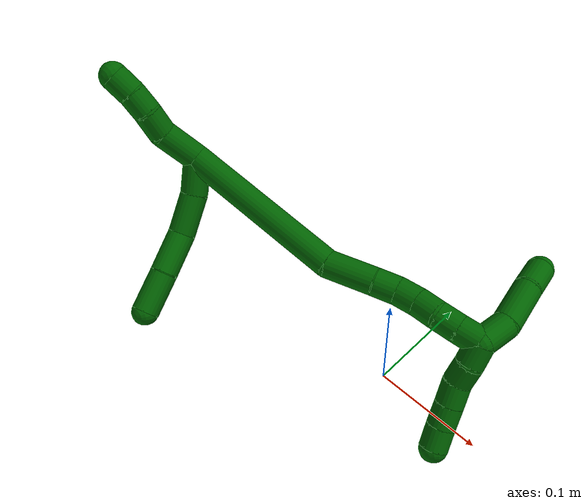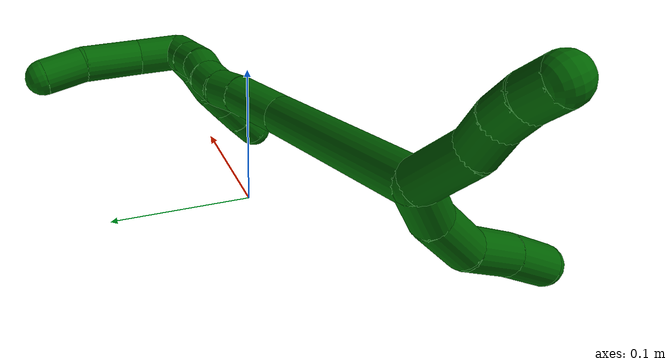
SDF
<sdf version="1.7">
 <world name="default">
  <model name="6">
   <static>0</static>
   <link name="6">
    <collision name="collision-cylinder-e_1_2_8">
     <pose>0.007473 -0.014028 0.004125 1.2848 0.472506 0.356471</pose>
     <geometry><cylinder><radius>0.0125</radius><length>0.032842</length></cylinder></geometry>
     <surface>
      <friction><ode><mu>1.16</mu><mu2>1.16</mu2><slip1>0</slip1><slip2>0</slip2></ode></friction>
      <contact><ode><kp>1e+06</kp><kd>1</kd><max_vel>0</max_vel><min_depth>0.001</min_depth></ode></contact>
     </surface>
    </collision>
    <visual name="visual-cylinder-e_1_2_8">
     <pose>0.007473 -0.014028 0.004125 1.2848 0.472506 0.356471</pose>
     <geometry><cylinder><radius>0.0125</radius><length>0.032842</length></cylinder></geometry>
     <material><ambient>0 0.392157 0.003922 1</ambient></material>
    </visual>
    <collision name="collision-cylinder-e_2_8_9">
     <pose>0.02186 -0.043873 0.017204 1.0557 0.363453 0.213454</pose>
     <geometry><cylinder><radius>0.0125</radius><length>0.038893</length></cylinder></geometry>
     <surface>
      <friction><ode><mu>1.16</mu><mu2>1.16</mu2><slip1>0</slip1><slip2>0</slip2></ode></friction>
      <contact><ode><kp>1e+06</kp><kd>1</kd><max_vel>0</max_vel><min_depth>0.001</min_depth></ode></contact>
     </surface>
    </collision>
    <visual name="visual-cylinder-e_2_8_9">
     <pose>0.02186 -0.043873 0.017204 1.0557 0.363453 0.213454</pose>
     <geometry><cylinder><radius>0.0125</radius><length>0.038893</length></cylinder></geometry>
     <material><ambient>0 0.392157 0.003922 1</ambient></material>
    </visual>
    <collision name="collision-cylinder-e_3_9_10">
     <pose>0.036402 -0.071622 0.040151 0.706018 0.393216 0.146511</pose>
     <geometry><cylinder><radius>0.0125</radius><length>0.039818</length></cylinder></geometry>
     <surface>
      <friction><ode><mu>1.16</mu><mu2>1.16</mu2><slip1>0</slip1><slip2>0</slip2></ode></friction>
      <contact><ode><kp>1e+06</kp><kd>1</kd><max_vel>0</max_vel><min_depth>0.001</min_depth></ode></contact>
     </surface>
    </collision>
    <visual name="visual-cylinder-e_3_9_10">
     <pose>0.036402 -0.071622 0.040151 0.706018 0.393216 0.146511</pose>
     <geometry><cylinder><radius>0.0125</radius><length>0.039818</length></cylinder></geometry>
     <material><ambient>0 0.392157 0.003922 1</ambient></material>
    </visual>
    <collision name="collision-cylinder-e_4_10_6">
     <pose>0.050544 -0.096208 0.067067 0.774925 0.345685 0.142253</pose>
     <geometry><cylinder><radius>0.0125</radius><length>0.038448</length></cylinder></geometry>
     <surface>
      <friction><ode><mu>1.16</mu><mu2>1.16</mu2><slip1>0</slip1><slip2>0</slip2></ode></friction>
      <contact><ode><kp>1e+06</kp><kd>1</kd><max_vel>0</max_vel><min_depth>0.001</min_depth></ode></contact>
     </surface>
    </collision>
    <visual name="visual-cylinder-e_4_10_6">
     <pose>0.050544 -0.096208 0.067067 0.774925 0.345685 0.142253</pose>
     <geometry><cylinder><radius>0.0125</radius><length>0.038448</length></cylinder></geometry>
     <material><ambient>0 0.392157 0.003922 1</ambient></material>
    </visual>
    <collision name="collision-cylinder-e_1_2_11">
     <pose>-0.013631 0.007417 0.010759 -0.603544 -0.80651 0.26406</pose>
     <geometry><cylinder><radius>0.0125</radius><length>0.037767</length></cylinder></geometry>
     <surface>
      <friction><ode><mu>1.16</mu><mu2>1.16</mu2><slip1>0</slip1><slip2>0</slip2></ode></friction>
      <contact><ode><kp>1e+06</kp><kd>1</kd><max_vel>0</max_vel><min_depth>0.001</min_depth></ode></contact>
     </surface>
    </collision>
    <visual name="visual-cylinder-e_1_2_11">
     <pose>-0.013631 0.007417 0.010759 -0.603544 -0.80651 0.26406</pose>
     <geometry><cylinder><radius>0.0125</radius><length>0.037767</length></cylinder></geometry>
     <material><ambient>0 0.392157 0.003922 1</ambient></material>
    </visual>
    <collision name="collision-cylinder-e_2_11_12">
     <pose>-0.034532 0.022136 0.02566 -1.05487 -0.713641 0.427629</pose>
     <geometry><cylinder><radius>0.0125</radius><length>0.022211</length></cylinder></geometry>
     <surface>
      <friction><ode><mu>1.16</mu><mu2>1.16</mu2><slip1>0</slip1><slip2>0</slip2></ode></friction>
      <contact><ode><kp>1e+06</kp><kd>1</kd><max_vel>0</max_vel><min_depth>0.001</min_depth></ode></contact>
     </surface>
    </collision>
    <visual name="visual-cylinder-e_2_11_12">
     <pose>-0.034532 0.022136 0.02566 -1.05487 -0.713641 0.427629</pose>
     <geometry><cylinder><radius>0.0125</radius><length>0.022211</length></cylinder></geometry>
     <material><ambient>0 0.392157 0.003922 1</ambient></material>
    </visual>
    <collision name="collision-cylinder-e_3_12_13">
     <pose>-0.049668 0.03466 0.033101 -1.00718 -0.905192 0.52354</pose>
     <geometry><cylinder><radius>0.0125</radius><length>0.020003</length></cylinder></geometry>
     <surface>
      <friction><ode><mu>1.16</mu><mu2>1.16</mu2><slip1>0</slip1><slip2>0</slip2></ode></friction>
      <contact><ode><kp>1e+06</kp><kd>1</kd><max_vel>0</max_vel><min_depth>0.001</min_depth></ode></contact>
     </surface>
    </collision>
    <visual name="visual-cylinder-e_3_12_13">
     <pose>-0.049668 0.03466 0.033101 -1.00718 -0.905192 0.52354</pose>
     <geometry><cylinder><radius>0.0125</radius><length>0.020003</length></cylinder></geometry>
     <material><ambient>0 0.392157 0.003922 1</ambient></material>
    </visual>
    <collision name="collision-cylinder-e_4_13_5">
     <pose>-0.065916 0.043784 0.040239 -0.793807 -0.992252 0.446202</pose>
     <geometry><cylinder><radius>0.0125</radius><length>0.02002</length></cylinder></geometry>
     <surface>
      <friction><ode><mu>1.16</mu><mu2>1.16</mu2><slip1>0</slip1><slip2>0</slip2></ode></friction>
      <contact><ode><kp>1e+06</kp><kd>1</kd><max_vel>0</max_vel><min_depth>0.001</min_depth></ode></contact>
     </surface>
    </collision>
    <visual name="visual-cylinder-e_4_13_5">
     <pose>-0.065916 0.043784 0.040239 -0.793807 -0.992252 0.446202</pose>
     <geometry><cylinder><radius>0.0125</radius><length>0.02002</length></cylinder></geometry>
     <material><ambient>0 0.392157 0.003922 1</ambient></material>
    </visual>
    <collision name="collision-cylinder-e_1_2_14">
     <pose>0.077718 0.002852 -0.005267 -2.64528 1.49388 -2.60736</pose>
     <geometry><cylinder><radius>0.0125</radius><length>0.155896</length></cylinder></geometry>
     <surface>
      <friction><ode><mu>1.16</mu><mu2>1.16</mu2><slip1>0</slip1><slip2>0</slip2></ode></friction>
      <contact><ode><kp>1e+06</kp><kd>1</kd><max_vel>0</max_vel><min_depth>0.001</min_depth></ode></contact>
     </surface>
    </collision>
    <visual name="visual-cylinder-e_1_2_14">
     <pose>0.077718 0.002852 -0.005267 -2.64528 1.49388 -2.60736</pose>
     <geometry><cylinder><radius>0.0125</radius><length>0.155896</length></cylinder></geometry>
     <material><ambient>0 0.392157 0.003922 1</ambient></material>
    </visual>
    <collision name="collision-cylinder-e_2_14_15">
     <pose>0.175548 0.011434 -0.016273 -2.357 1.18751 -2.04182</pose>
     <geometry><cylinder><radius>0.0125</radius><length>0.043372</length></cylinder></geometry>
     <surface>
      <friction><ode><mu>1.16</mu><mu2>1.16</mu2><slip1>0</slip1><slip2>0</slip2></ode></friction>
      <contact><ode><kp>1e+06</kp><kd>1</kd><max_vel>0</max_vel><min_depth>0.001</min_depth></ode></contact>
     </surface>
    </collision>
    <visual name="visual-cylinder-e_2_14_15">
     <pose>0.175548 0.011434 -0.016273 -2.357 1.18751 -2.04182</pose>
     <geometry><cylinder><radius>0.0125</radius><length>0.043372</length></cylinder></geometry>
     <material><ambient>0 0.392157 0.003922 1</ambient></material>
    </visual>
    <collision name="collision-cylinder-e_3_15_16">
     <pose>0.205215 0.019171 -0.025337 -2.59849 1.18476 -2.35706</pose>
     <geometry><cylinder><radius>0.0125</radius><length>0.020627</length></cylinder></geometry>
     <surface>
      <friction><ode><mu>1.16</mu><mu2>1.16</mu2><slip1>0</slip1><slip2>0</slip2></ode></friction>
      <contact><ode><kp>1e+06</kp><kd>1</kd><max_vel>0</max_vel><min_depth>0.001</min_depth></ode></contact>
     </surface>
    </collision>
    <visual name="visual-cylinder-e_3_15_16">
     <pose>0.205215 0.019171 -0.025337 -2.59849 1.18476 -2.35706</pose>
     <geometry><cylinder><radius>0.0125</radius><length>0.020627</length></cylinder></geometry>
     <material><ambient>0 0.392157 0.003922 1</ambient></material>
    </visual>
    <collision name="collision-cylinder-e_4_16_17">
     <pose>0.224471 0.023626 -0.029428 -1.8743 1.31228 -1.6176</pose>
     <geometry><cylinder><radius>0.0125</radius><length>0.020071</length></cylinder></geometry>
     <surface>
      <friction><ode><mu>1.16</mu><mu2>1.16</mu2><slip1>0</slip1><slip2>0</slip2></ode></friction>
      <contact><ode><kp>1e+06</kp><kd>1</kd><max_vel>0</max_vel><min_depth>0.001</min_depth></ode></contact>
     </surface>
    </collision>
    <visual name="visual-cylinder-e_4_16_17">
     <pose>0.224471 0.023626 -0.029428 -1.8743 1.31228 -1.6176</pose>
     <geometry><cylinder><radius>0.0125</radius><length>0.020071</length></cylinder></geometry>
     <material><ambient>0 0.392157 0.003922 1</ambient></material>
    </visual>
    <collision name="collision-cylinder-e_5_17_18">
     <pose>0.243767 0.028755 -0.029277 -1.24118 1.28369 -0.981341</pose>
     <geometry><cylinder><radius>0.0125</radius><length>0.020008</length></cylinder></geometry>
     <surface>
      <friction><ode><mu>1.16</mu><mu2>1.16</mu2><slip1>0</slip1><slip2>0</slip2></ode></friction>
      <contact><ode><kp>1e+06</kp><kd>1</kd><max_vel>0</max_vel><min_depth>0.001</min_depth></ode></contact>
     </surface>
    </collision>
    <visual name="visual-cylinder-e_5_17_18">
     <pose>0.243767 0.028755 -0.029277 -1.24118 1.28369 -0.981341</pose>
     <geometry><cylinder><radius>0.0125</radius><length>0.020008</length></cylinder></geometry>
     <material><ambient>0 0.392157 0.003922 1</ambient></material>
    </visual>
    <collision name="collision-cylinder-e_6_18_19">
     <pose>0.263216 0.032727 -0.02947 -2.28051 1.39964 -2.14287</pose>
     <geometry><cylinder><radius>0.0125</radius><length>0.02</length></cylinder></geometry>
     <surface>
      <friction><ode><mu>1.16</mu><mu2>1.16</mu2><slip1>0</slip1><slip2>0</slip2></ode></friction>
      <contact><ode><kp>1e+06</kp><kd>1</kd><max_vel>0</max_vel><min_depth>0.001</min_depth></ode></contact>
     </surface>
    </collision>
    <visual name="visual-cylinder-e_6_18_19">
     <pose>0.263216 0.032727 -0.02947 -2.28051 1.39964 -2.14287</pose>
     <geometry><cylinder><radius>0.0125</radius><length>0.02</length></cylinder></geometry>
     <material><ambient>0 0.392157 0.003922 1</ambient></material>
    </visual>
    <collision name="collision-cylinder-e_7_19_1">
     <pose>0.282886 0.035648 -0.031702 -2.17374 1.37198 -2.00003</pose>
     <geometry><cylinder><radius>0.0125</radius><length>0.020026</length></cylinder></geometry>
     <surface>
      <friction><ode><mu>1.16</mu><mu2>1.16</mu2><slip1>0</slip1><slip2>0</slip2></ode></friction>
      <contact><ode><kp>1e+06</kp><kd>1</kd><max_vel>0</max_vel><min_depth>0.001</min_depth></ode></contact>
     </surface>
    </collision>
    <visual name="visual-cylinder-e_7_19_1">
     <pose>0.282886 0.035648 -0.031702 -2.17374 1.37198 -2.00003</pose>
     <geometry><cylinder><radius>0.0125</radius><length>0.020026</length></cylinder></geometry>
     <material><ambient>0 0.392157 0.003922 1</ambient></material>
    </visual>
    <collision name="collision-cylinder-e_1_1_20">
     <pose>0.294618 0.040891 -0.046864 -2.88964 0.131436 -0.958509</pose>
     <geometry><cylinder><radius>0.0125</radius><length>0.02925</length></cylinder></geometry>
     <surface>
      <friction><ode><mu>1.16</mu><mu2>1.16</mu2><slip1>0</slip1><slip2>0</slip2></ode></friction>
      <contact><ode><kp>1e+06</kp><kd>1</kd><max_vel>0</max_vel><min_depth>0.001</min_depth></ode></contact>
     </surface>
    </collision>
    <visual name="visual-cylinder-e_1_1_20">
     <pose>0.294618 0.040891 -0.046864 -2.88964 0.131436 -0.958509</pose>
     <geometry><cylinder><radius>0.0125</radius><length>0.02925</length></cylinder></geometry>
     <material><ambient>0 0.392157 0.003922 1</ambient></material>
    </visual>
    <collision name="collision-cylinder-e_2_20_21">
     <pose>0.292655 0.050618 -0.080571 -2.84026 -0.186201 1.10278</pose>
     <geometry><cylinder><radius>0.0125</radius><length>0.041911</length></cylinder></geometry>
     <surface>
      <friction><ode><mu>1.16</mu><mu2>1.16</mu2><slip1>0</slip1><slip2>0</slip2></ode></friction>
      <contact><ode><kp>1e+06</kp><kd>1</kd><max_vel>0</max_vel><min_depth>0.001</min_depth></ode></contact>
     </surface>
    </collision>
    <visual name="visual-cylinder-e_2_20_21">
     <pose>0.292655 0.050618 -0.080571 -2.84026 -0.186201 1.10278</pose>
     <geometry><cylinder><radius>0.0125</radius><length>0.041911</length></cylinder></geometry>
     <material><ambient>0 0.392157 0.003922 1</ambient></material>
    </visual>
    <collision name="collision-cylinder-e_3_21_4">
     <pose>0.286716 0.058213 -0.11443 -3.03749 -0.143342 1.88613</pose>
     <geometry><cylinder><radius>0.0125</radius><length>0.028839</length></cylinder></geometry>
     <surface>
      <friction><ode><mu>1.16</mu><mu2>1.16</mu2><slip1>0</slip1><slip2>0</slip2></ode></friction>
      <contact><ode><kp>1e+06</kp><kd>1</kd><max_vel>0</max_vel><min_depth>0.001</min_depth></ode></contact>
     </surface>
    </collision>
    <visual name="visual-cylinder-e_3_21_4">
     <pose>0.286716 0.058213 -0.11443 -3.03749 -0.143342 1.88613</pose>
     <geometry><cylinder><radius>0.0125</radius><length>0.028839</length></cylinder></geometry>
     <material><ambient>0 0.392157 0.003922 1</ambient></material>
    </visual>
    <collision name="collision-cylinder-e_1_1_22">
     <pose>0.294931 0.028346 -0.028916 1.15834 0.224846 0.1474</pose>
     <geometry><cylinder><radius>0.0125</radius><length>0.02</length></cylinder></geometry>
     <surface>
      <friction><ode><mu>1.16</mu><mu2>1.16</mu2><slip1>0</slip1><slip2>0</slip2></ode></friction>
      <contact><ode><kp>1e+06</kp><kd>1</kd><max_vel>0</max_vel><min_depth>0.001</min_depth></ode></contact>
     </surface>
    </collision>
    <visual name="visual-cylinder-e_1_1_22">
     <pose>0.294931 0.028346 -0.028916 1.15834 0.224846 0.1474</pose>
     <geometry><cylinder><radius>0.0125</radius><length>0.02</length></cylinder></geometry>
     <material><ambient>0 0.392157 0.003922 1</ambient></material>
    </visual>
    <collision name="collision-cylinder-e_2_22_23">
     <pose>0.298394 0.009811 -0.022509 1.3163 0.123686 0.095676</pose>
     <geometry><cylinder><radius>0.0125</radius><length>0.02</length></cylinder></geometry>
     <surface>
      <friction><ode><mu>1.16</mu><mu2>1.16</mu2><slip1>0</slip1><slip2>0</slip2></ode></friction>
      <contact><ode><kp>1e+06</kp><kd>1</kd><max_vel>0</max_vel><min_depth>0.001</min_depth></ode></contact>
     </surface>
    </collision>
    <visual name="visual-cylinder-e_2_22_23">
     <pose>0.298394 0.009811 -0.022509 1.3163 0.123686 0.095676</pose>
     <geometry><cylinder><radius>0.0125</radius><length>0.02</length></cylinder></geometry>
     <material><ambient>0 0.392157 0.003922 1</ambient></material>
    </visual>
    <collision name="collision-cylinder-e_3_23_24">
     <pose>0.303255 -0.008177 -0.015944 1.11919 0.371124 0.234096</pose>
     <geometry><cylinder><radius>0.0125</radius><length>0.02</length></cylinder></geometry>
     <surface>
      <friction><ode><mu>1.16</mu><mu2>1.16</mu2><slip1>0</slip1><slip2>0</slip2></ode></friction>
      <contact><ode><kp>1e+06</kp><kd>1</kd><max_vel>0</max_vel><min_depth>0.001</min_depth></ode></contact>
     </surface>
    </collision>
    <visual name="visual-cylinder-e_3_23_24">
     <pose>0.303255 -0.008177 -0.015944 1.11919 0.371124 0.234096</pose>
     <geometry><cylinder><radius>0.0125</radius><length>0.02</length></cylinder></geometry>
     <material><ambient>0 0.392157 0.003922 1</ambient></material>
    </visual>
    <collision name="collision-cylinder-e_4_24_25">
     <pose>0.310366 -0.024937 -0.007668 1.10508 0.355974 0.22094</pose>
     <geometry><cylinder><radius>0.0125</radius><length>0.02</length></cylinder></geometry>
     <surface>
      <friction><ode><mu>1.16</mu><mu2>1.16</mu2><slip1>0</slip1><slip2>0</slip2></ode></friction>
      <contact><ode><kp>1e+06</kp><kd>1</kd><max_vel>0</max_vel><min_depth>0.001</min_depth></ode></contact>
     </surface>
    </collision>
    <visual name="visual-cylinder-e_4_24_25">
     <pose>0.310366 -0.024937 -0.007668 1.10508 0.355974 0.22094</pose>
     <geometry><cylinder><radius>0.0125</radius><length>0.02</length></cylinder></geometry>
     <material><ambient>0 0.392157 0.003922 1</ambient></material>
    </visual>
    <collision name="collision-cylinder-e_5_25_3">
     <pose>0.317647 -0.041434 0.000971 1.07146 0.389291 0.233003</pose>
     <geometry><cylinder><radius>0.0125</radius><length>0.02</length></cylinder></geometry>
     <surface>
      <friction><ode><mu>1.16</mu><mu2>1.16</mu2><slip1>0</slip1><slip2>0</slip2></ode></friction>
      <contact><ode><kp>1e+06</kp><kd>1</kd><max_vel>0</max_vel><min_depth>0.001</min_depth></ode></contact>
     </surface>
    </collision>
    <visual name="visual-cylinder-e_5_25_3">
     <pose>0.317647 -0.041434 0.000971 1.07146 0.389291 0.233003</pose>
     <geometry><cylinder><radius>0.0125</radius><length>0.02</length></cylinder></geometry>
     <material><ambient>0 0.392157 0.003922 1</ambient></material>
    </visual>
    <collision name="collision-sphere-3">
     <pose>0.321442 -0.049556 0.005402 0 -0 0</pose>
     <geometry><sphere><radius>0.0125</radius></sphere></geometry>
     <surface>
      <friction><ode><mu>1.16</mu><mu2>1.16</mu2><slip1>0</slip1><slip2>0</slip2></ode></friction>
      <contact><ode><kp>1e+06</kp><kd>1</kd><max_vel>0</max_vel><min_depth>0.001</min_depth></ode></contact>
     </surface>
    </collision>
    <visual name="visual-sphere-3">
     <pose>0.321442 -0.049556 0.005402 0 -0 0</pose>
     <geometry><sphere><radius>0.0125</radius></sphere></geometry>
     <material><ambient>0 0.392157 0.003922 1</ambient></material>
    </visual>
    <collision name="collision-sphere-25">
     <pose>0.313851 -0.033312 -0.003459 0 -0 0</pose>
     <geometry><sphere><radius>0.0125</radius></sphere></geometry>
     <surface>
      <friction><ode><mu>1.16</mu><mu2>1.16</mu2><slip1>0</slip1><slip2>0</slip2></ode></friction>
      <contact><ode><kp>1e+06</kp><kd>1</kd><max_vel>0</max_vel><min_depth>0.001</min_depth></ode></contact>
     </surface>
    </collision>
    <visual name="visual-sphere-25">
     <pose>0.313851 -0.033312 -0.003459 0 -0 0</pose>
     <geometry><sphere><radius>0.0125</radius></sphere></geometry>
     <material><ambient>0 0.392157 0.003922 1</ambient></material>
    </visual>
    <collision name="collision-sphere-24">
     <pose>0.306881 -0.016562 -0.011877 0 -0 0</pose>
     <geometry><sphere><radius>0.0125</radius></sphere></geometry>
     <surface>
      <friction><ode><mu>1.16</mu><mu2>1.16</mu2><slip1>0</slip1><slip2>0</slip2></ode></friction>
      <contact><ode><kp>1e+06</kp><kd>1</kd><max_vel>0</max_vel><min_depth>0.001</min_depth></ode></contact>
     </surface>
    </collision>
    <visual name="visual-sphere-24">
     <pose>0.306881 -0.016562 -0.011877 0 -0 0</pose>
     <geometry><sphere><radius>0.0125</radius></sphere></geometry>
     <material><ambient>0 0.392157 0.003922 1</ambient></material>
    </visual>
    <collision name="collision-sphere-23">
     <pose>0.299628 0.000207 -0.020011 0 -0 0</pose>
     <geometry><sphere><radius>0.0125</radius></sphere></geometry>
     <surface>
      <friction><ode><mu>1.16</mu><mu2>1.16</mu2><slip1>0</slip1><slip2>0</slip2></ode></friction>
      <contact><ode><kp>1e+06</kp><kd>1</kd><max_vel>0</max_vel><min_depth>0.001</min_depth></ode></contact>
     </surface>
    </collision>
    <visual name="visual-sphere-23">
     <pose>0.299628 0.000207 -0.020011 0 -0 0</pose>
     <geometry><sphere><radius>0.0125</radius></sphere></geometry>
     <material><ambient>0 0.392157 0.003922 1</ambient></material>
    </visual>
    <collision name="collision-sphere-22">
     <pose>0.297161 0.019415 -0.025008 0 -0 0</pose>
     <geometry><sphere><radius>0.0125</radius></sphere></geometry>
     <surface>
      <friction><ode><mu>1.16</mu><mu2>1.16</mu2><slip1>0</slip1><slip2>0</slip2></ode></friction>
      <contact><ode><kp>1e+06</kp><kd>1</kd><max_vel>0</max_vel><min_depth>0.001</min_depth></ode></contact>
     </surface>
    </collision>
    <visual name="visual-sphere-22">
     <pose>0.297161 0.019415 -0.025008 0 -0 0</pose>
     <geometry><sphere><radius>0.0125</radius></sphere></geometry>
     <material><ambient>0 0.392157 0.003922 1</ambient></material>
    </visual>
    <collision name="collision-sphere-4">
     <pose>0.284656 0.059696 -0.128625 0 -0 0</pose>
     <geometry><sphere><radius>0.0125</radius></sphere></geometry>
     <surface>
      <friction><ode><mu>1.16</mu><mu2>1.16</mu2><slip1>0</slip1><slip2>0</slip2></ode></friction>
      <contact><ode><kp>1e+06</kp><kd>1</kd><max_vel>0</max_vel><min_depth>0.001</min_depth></ode></contact>
     </surface>
    </collision>
    <visual name="visual-sphere-4">
     <pose>0.284656 0.059696 -0.128625 0 -0 0</pose>
     <geometry><sphere><radius>0.0125</radius></sphere></geometry>
     <material><ambient>0 0.392157 0.003922 1</ambient></material>
    </visual>
    <collision name="collision-sphere-21">
     <pose>0.288776 0.05673 -0.100236 0 -0 0</pose>
     <geometry><sphere><radius>0.0125</radius></sphere></geometry>
     <surface>
      <friction><ode><mu>1.16</mu><mu2>1.16</mu2><slip1>0</slip1><slip2>0</slip2></ode></friction>
      <contact><ode><kp>1e+06</kp><kd>1</kd><max_vel>0</max_vel><min_depth>0.001</min_depth></ode></contact>
     </surface>
    </collision>
    <visual name="visual-sphere-21">
     <pose>0.288776 0.05673 -0.100236 0 -0 0</pose>
     <geometry><sphere><radius>0.0125</radius></sphere></geometry>
     <material><ambient>0 0.392157 0.003922 1</ambient></material>
    </visual>
    <collision name="collision-sphere-20">
     <pose>0.296535 0.044506 -0.060905 0 -0 0</pose>
     <geometry><sphere><radius>0.0125</radius></sphere></geometry>
     <surface>
      <friction><ode><mu>1.16</mu><mu2>1.16</mu2><slip1>0</slip1><slip2>0</slip2></ode></friction>
      <contact><ode><kp>1e+06</kp><kd>1</kd><max_vel>0</max_vel><min_depth>0.001</min_depth></ode></contact>
     </surface>
    </collision>
    <visual name="visual-sphere-20">
     <pose>0.296535 0.044506 -0.060905 0 -0 0</pose>
     <geometry><sphere><radius>0.0125</radius></sphere></geometry>
     <material><ambient>0 0.392157 0.003922 1</ambient></material>
    </visual>
    <collision name="collision-sphere-11">
     <pose>-0.027263 0.014833 0.021518 0 -0 0</pose>
     <geometry><sphere><radius>0.0125</radius></sphere></geometry>
     <surface>
      <friction><ode><mu>1.16</mu><mu2>1.16</mu2><slip1>0</slip1><slip2>0</slip2></ode></friction>
      <contact><ode><kp>1e+06</kp><kd>1</kd><max_vel>0</max_vel><min_depth>0.001</min_depth></ode></contact>
     </surface>
    </collision>
    <visual name="visual-sphere-11">
     <pose>-0.027263 0.014833 0.021518 0 -0 0</pose>
     <geometry><sphere><radius>0.0125</radius></sphere></geometry>
     <material><ambient>0 0.392157 0.003922 1</ambient></material>
    </visual>
    <collision name="collision-sphere-6">
     <pose>0.057058 -0.108862 0.07999 0 -0 0</pose>
     <geometry><sphere><radius>0.0125</radius></sphere></geometry>
     <surface>
      <friction><ode><mu>1.16</mu><mu2>1.16</mu2><slip1>0</slip1><slip2>0</slip2></ode></friction>
      <contact><ode><kp>1e+06</kp><kd>1</kd><max_vel>0</max_vel><min_depth>0.001</min_depth></ode></contact>
     </surface>
    </collision>
    <visual name="visual-sphere-6">
     <pose>0.057058 -0.108862 0.07999 0 -0 0</pose>
     <geometry><sphere><radius>0.0125</radius></sphere></geometry>
     <material><ambient>0 0.392157 0.003922 1</ambient></material>
    </visual>
    <collision name="collision-sphere-10">
     <pose>0.04403 -0.083553 0.054145 0 -0 0</pose>
     <geometry><sphere><radius>0.0125</radius></sphere></geometry>
     <surface>
      <friction><ode><mu>1.16</mu><mu2>1.16</mu2><slip1>0</slip1><slip2>0</slip2></ode></friction>
      <contact><ode><kp>1e+06</kp><kd>1</kd><max_vel>0</max_vel><min_depth>0.001</min_depth></ode></contact>
     </surface>
    </collision>
    <visual name="visual-sphere-10">
     <pose>0.04403 -0.083553 0.054145 0 -0 0</pose>
     <geometry><sphere><radius>0.0125</radius></sphere></geometry>
     <material><ambient>0 0.392157 0.003922 1</ambient></material>
    </visual>
    <collision name="collision-sphere-9">
     <pose>0.028773 -0.059691 0.026158 0 -0 0</pose>
     <geometry><sphere><radius>0.0125</radius></sphere></geometry>
     <surface>
      <friction><ode><mu>1.16</mu><mu2>1.16</mu2><slip1>0</slip1><slip2>0</slip2></ode></friction>
      <contact><ode><kp>1e+06</kp><kd>1</kd><max_vel>0</max_vel><min_depth>0.001</min_depth></ode></contact>
     </surface>
    </collision>
    <visual name="visual-sphere-9">
     <pose>0.028773 -0.059691 0.026158 0 -0 0</pose>
     <geometry><sphere><radius>0.0125</radius></sphere></geometry>
     <material><ambient>0 0.392157 0.003922 1</ambient></material>
    </visual>
    <collision name="collision-sphere-2">
     <geometry><sphere><radius>0.0125</radius></sphere></geometry>
     <surface>
      <friction><ode><mu>1.16</mu><mu2>1.16</mu2><slip1>0</slip1><slip2>0</slip2></ode></friction>
      <contact><ode><kp>1e+06</kp><kd>1</kd><max_vel>0</max_vel><min_depth>0.001</min_depth></ode></contact>
     </surface>
    </collision>
    <visual name="visual-sphere-2">
     <geometry><sphere><radius>0.0125</radius></sphere></geometry>
     <material><ambient>0 0.392157 0.003922 1</ambient></material>
    </visual>
    <collision name="collision-sphere-19">
     <pose>0.27307 0.034019 -0.03058 0 -0 0</pose>
     <geometry><sphere><radius>0.0125</radius></sphere></geometry>
     <surface>
      <friction><ode><mu>1.16</mu><mu2>1.16</mu2><slip1>0</slip1><slip2>0</slip2></ode></friction>
      <contact><ode><kp>1e+06</kp><kd>1</kd><max_vel>0</max_vel><min_depth>0.001</min_depth></ode></contact>
     </surface>
    </collision>
    <visual name="visual-sphere-19">
     <pose>0.27307 0.034019 -0.03058 0 -0 0</pose>
     <geometry><sphere><radius>0.0125</radius></sphere></geometry>
     <material><ambient>0 0.392157 0.003922 1</ambient></material>
    </visual>
    <collision name="collision-sphere-8">
     <pose>0.014947 -0.028055 0.00825 0 -0 0</pose>
     <geometry><sphere><radius>0.0125</radius></sphere></geometry>
     <surface>
      <friction><ode><mu>1.16</mu><mu2>1.16</mu2><slip1>0</slip1><slip2>0</slip2></ode></friction>
      <contact><ode><kp>1e+06</kp><kd>1</kd><max_vel>0</max_vel><min_depth>0.001</min_depth></ode></contact>
     </surface>
    </collision>
    <visual name="visual-sphere-8">
     <pose>0.014947 -0.028055 0.00825 0 -0 0</pose>
     <geometry><sphere><radius>0.0125</radius></sphere></geometry>
     <material><ambient>0 0.392157 0.003922 1</ambient></material>
    </visual>
    <collision name="collision-sphere-12">
     <pose>-0.041802 0.029439 0.029802 0 -0 0</pose>
     <geometry><sphere><radius>0.0125</radius></sphere></geometry>
     <surface>
      <friction><ode><mu>1.16</mu><mu2>1.16</mu2><slip1>0</slip1><slip2>0</slip2></ode></friction>
      <contact><ode><kp>1e+06</kp><kd>1</kd><max_vel>0</max_vel><min_depth>0.001</min_depth></ode></contact>
     </surface>
    </collision>
    <visual name="visual-sphere-12">
     <pose>-0.041802 0.029439 0.029802 0 -0 0</pose>
     <geometry><sphere><radius>0.0125</radius></sphere></geometry>
     <material><ambient>0 0.392157 0.003922 1</ambient></material>
    </visual>
    <collision name="collision-sphere-13">
     <pose>-0.057535 0.039881 0.036401 0 -0 0</pose>
     <geometry><sphere><radius>0.0125</radius></sphere></geometry>
     <surface>
      <friction><ode><mu>1.16</mu><mu2>1.16</mu2><slip1>0</slip1><slip2>0</slip2></ode></friction>
      <contact><ode><kp>1e+06</kp><kd>1</kd><max_vel>0</max_vel><min_depth>0.001</min_depth></ode></contact>
     </surface>
    </collision>
    <visual name="visual-sphere-13">
     <pose>-0.057535 0.039881 0.036401 0 -0 0</pose>
     <geometry><sphere><radius>0.0125</radius></sphere></geometry>
     <material><ambient>0 0.392157 0.003922 1</ambient></material>
    </visual>
    <collision name="collision-sphere-5">
     <pose>-0.074297 0.047686 0.044076 0 -0 0</pose>
     <geometry><sphere><radius>0.0125</radius></sphere></geometry>
     <surface>
      <friction><ode><mu>1.16</mu><mu2>1.16</mu2><slip1>0</slip1><slip2>0</slip2></ode></friction>
      <contact><ode><kp>1e+06</kp><kd>1</kd><max_vel>0</max_vel><min_depth>0.001</min_depth></ode></contact>
     </surface>
    </collision>
    <visual name="visual-sphere-5">
     <pose>-0.074297 0.047686 0.044076 0 -0 0</pose>
     <geometry><sphere><radius>0.0125</radius></sphere></geometry>
     <material><ambient>0 0.392157 0.003922 1</ambient></material>
    </visual>
    <collision name="collision-sphere-14">
     <pose>0.155435 0.005704 -0.010534 0 -0 0</pose>
     <geometry><sphere><radius>0.0125</radius></sphere></geometry>
     <surface>
      <friction><ode><mu>1.16</mu><mu2>1.16</mu2><slip1>0</slip1><slip2>0</slip2></ode></friction>
      <contact><ode><kp>1e+06</kp><kd>1</kd><max_vel>0</max_vel><min_depth>0.001</min_depth></ode></contact>
     </surface>
    </collision>
    <visual name="visual-sphere-14">
     <pose>0.155435 0.005704 -0.010534 0 -0 0</pose>
     <geometry><sphere><radius>0.0125</radius></sphere></geometry>
     <material><ambient>0 0.392157 0.003922 1</ambient></material>
    </visual>
    <collision name="collision-sphere-15">
     <pose>0.19566 0.017164 -0.022012 0 -0 0</pose>
     <geometry><sphere><radius>0.0125</radius></sphere></geometry>
     <surface>
      <friction><ode><mu>1.16</mu><mu2>1.16</mu2><slip1>0</slip1><slip2>0</slip2></ode></friction>
      <contact><ode><kp>1e+06</kp><kd>1</kd><max_vel>0</max_vel><min_depth>0.001</min_depth></ode></contact>
     </surface>
    </collision>
    <visual name="visual-sphere-15">
     <pose>0.19566 0.017164 -0.022012 0 -0 0</pose>
     <geometry><sphere><radius>0.0125</radius></sphere></geometry>
     <material><ambient>0 0.392157 0.003922 1</ambient></material>
    </visual>
    <collision name="collision-sphere-16">
     <pose>0.214769 0.021178 -0.028661 0 -0 0</pose>
     <geometry><sphere><radius>0.0125</radius></sphere></geometry>
     <surface>
      <friction><ode><mu>1.16</mu><mu2>1.16</mu2><slip1>0</slip1><slip2>0</slip2></ode></friction>
      <contact><ode><kp>1e+06</kp><kd>1</kd><max_vel>0</max_vel><min_depth>0.001</min_depth></ode></contact>
     </surface>
    </collision>
    <visual name="visual-sphere-16">
     <pose>0.214769 0.021178 -0.028661 0 -0 0</pose>
     <geometry><sphere><radius>0.0125</radius></sphere></geometry>
     <material><ambient>0 0.392157 0.003922 1</ambient></material>
    </visual>
    <collision name="collision-sphere-17">
     <pose>0.234173 0.026074 -0.030194 0 -0 0</pose>
     <geometry><sphere><radius>0.0125</radius></sphere></geometry>
     <surface>
      <friction><ode><mu>1.16</mu><mu2>1.16</mu2><slip1>0</slip1><slip2>0</slip2></ode></friction>
      <contact><ode><kp>1e+06</kp><kd>1</kd><max_vel>0</max_vel><min_depth>0.001</min_depth></ode></contact>
     </surface>
    </collision>
    <visual name="visual-sphere-17">
     <pose>0.234173 0.026074 -0.030194 0 -0 0</pose>
     <geometry><sphere><radius>0.0125</radius></sphere></geometry>
     <material><ambient>0 0.392157 0.003922 1</ambient></material>
    </visual>
    <collision name="collision-sphere-18">
     <pose>0.253362 0.031435 -0.028361 0 -0 0</pose>
     <geometry><sphere><radius>0.0125</radius></sphere></geometry>
     <surface>
      <friction><ode><mu>1.16</mu><mu2>1.16</mu2><slip1>0</slip1><slip2>0</slip2></ode></friction>
      <contact><ode><kp>1e+06</kp><kd>1</kd><max_vel>0</max_vel><min_depth>0.001</min_depth></ode></contact>
     </surface>
    </collision>
    <visual name="visual-sphere-18">
     <pose>0.253362 0.031435 -0.028361 0 -0 0</pose>
     <geometry><sphere><radius>0.0125</radius></sphere></geometry>
     <material><ambient>0 0.392157 0.003922 1</ambient></material>
    </visual>
    <collision name="collision-sphere-1">
     <pose>0.292701 0.037277 -0.032823 0 -0 0</pose>
     <geometry><sphere><radius>0.0125</radius></sphere></geometry>
     <surface>
      <friction><ode><mu>1.16</mu><mu2>1.16</mu2><slip1>0</slip1><slip2>0</slip2></ode></friction>
      <contact><ode><kp>1e+06</kp><kd>1</kd><max_vel>0</max_vel><min_depth>0.001</min_depth></ode></contact>
     </surface>
    </collision>
    <visual name="visual-sphere-1">
     <pose>0.292701 0.037277 -0.032823 0 -0 0</pose>
     <geometry><sphere><radius>0.0125</radius></sphere></geometry>
     <material><ambient>0 0.392157 0.003922 1</ambient></material>
    </visual>
    <inertial>
     <pose>0.139749 0.002195 -0.008738 0 -0 0</pose>
     <mass>0.75</mass>
     <inertia>
      <ixx>3.7e-05</ixx>
      <ixy>0</ixy>
      <ixz>0</ixz>
      <iyy>0.000351</iyy>
      <iyz>0</iyz>
      <izz>-0.000335</izz>
     </inertia>
    </inertial>
   </link>
   <pose>-0.221353 -0.011525 0.133548 1.30004 0.242218 0.000386</pose>
  </model>
 </world>
</sdf>
